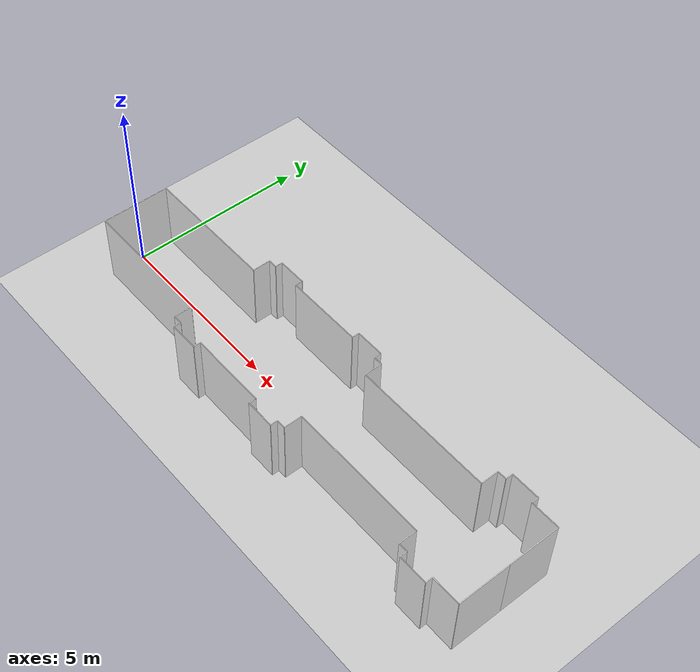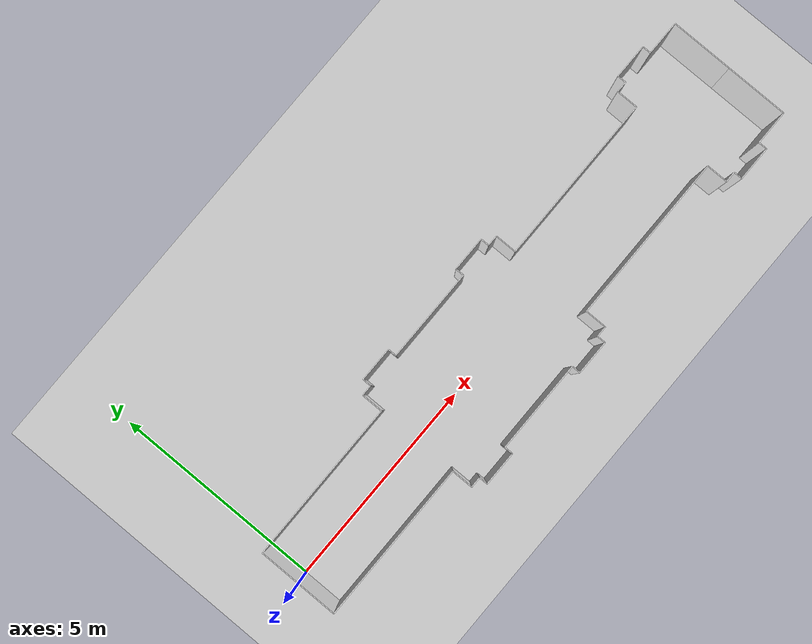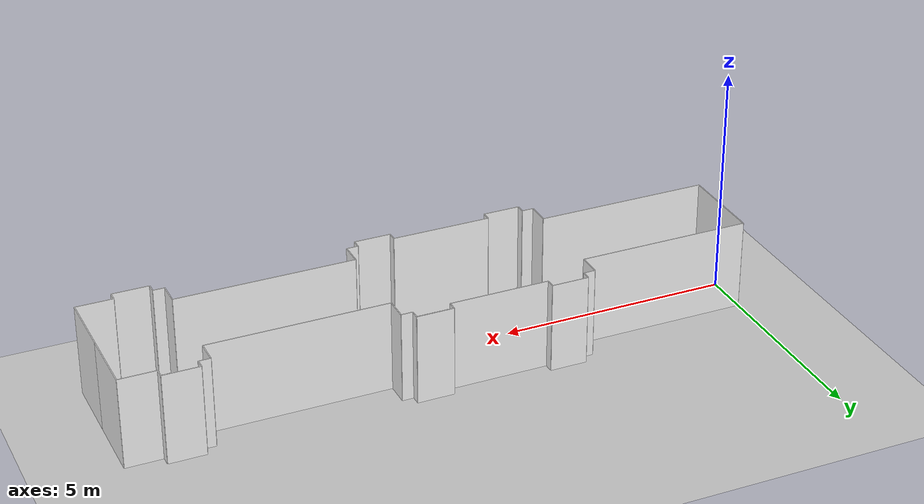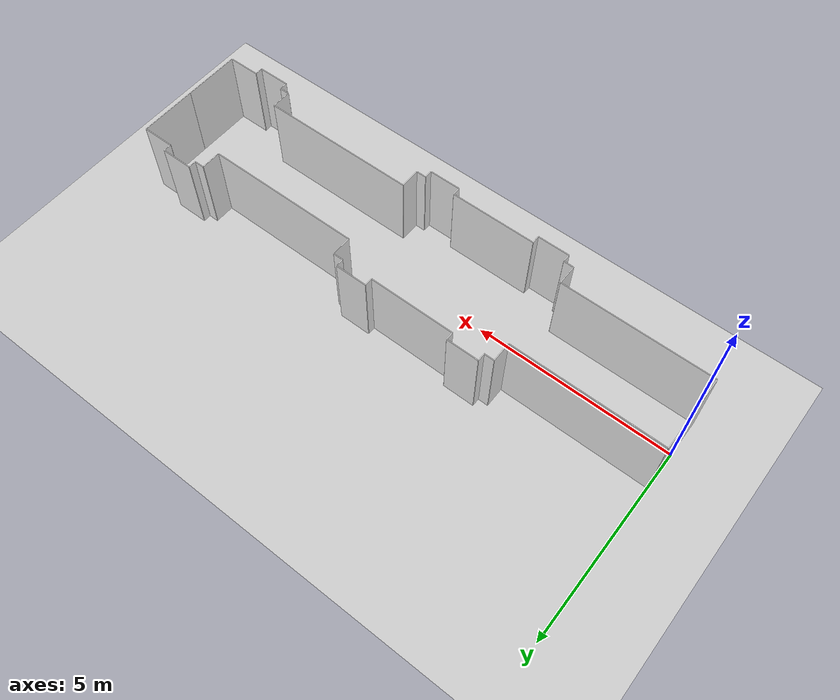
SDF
<sdf version="1.7">
 <world name="hallway_world">
  <gravity>0 0 -9.81</gravity>
  <magnetic_field>6e-06 2.3e-05 -4.2e-05</magnetic_field>
  <atmosphere type="adiabatic"/>
  <physics name="default_physics" default="0" type="ode">
   <max_step_size>0.001</max_step_size>
   <real_time_factor>1</real_time_factor>
   <real_time_update_rate>1000</real_time_update_rate>
  </physics>
  <light name="sun" type="directional">
   <pose>0 0 10 0 -0 0</pose>
   <diffuse>0.8 0.8 0.8 1</diffuse>
   <specular>0.2 0.2 0.2 1</specular>
   <attenuation>
    <range>1000</range>
    <constant>0.9</constant>
    <linear>0.01</linear>
    <quadratic>0.001</quadratic>
   </attenuation>
   <direction>-0.5 0.1 -0.9</direction>
   <spot><inner_angle>0</inner_angle><outer_angle>0</outer_angle><falloff>0</falloff></spot>
  </light>
  <model name="ground_plane">
   <static>1</static>
   <link name="link">
    <collision name="collision">
     <geometry><plane><normal>0 0 1</normal><size>100 100</size></plane></geometry>
     <surface><friction><ode><mu>1</mu><mu2>1</mu2></ode></friction></surface>
    </collision>
    <visual name="visual">
     <geometry><plane><normal>0 0 1</normal><size>100 100</size></plane></geometry>
     <material>
      <script><uri>file://media/materials/scripts/gazebo.material</uri><name>Gazebo/Grey</name></script>
     </material>
    </visual>
   </link>
  </model>
  <model name="wall_1">
   <pose>0 0.475 1 0 -0 0</pose>
   <static>1</static>
   <link name="link">
    <collision name="collision"><geometry><box><size>0.02 0.95 2</size></box></geometry></collision>
    <visual name="visual">
     <geometry><box><size>0.02 0.95 2</size></box></geometry>
     <material>
      <script><uri>file://media/materials/scripts/gazebo.material</uri><name>Gazebo/White</name></script>
     </material>
    </visual>
   </link>
  </model>
  <model name="wall_2">
   <pose>1.875 0.95 1 0 -0 0</pose>
   <static>1</static>
   <link name="link">
    <collision name="collision"><geometry><box><size>3.75 0.02 2</size></box></geometry></collision>
    <visual name="visual">
     <geometry><box><size>3.75 0.02 2</size></box></geometry>
     <material>
      <script><uri>file://media/materials/scripts/gazebo.material</uri><name>Gazebo/White</name></script>
     </material>
    </visual>
   </link>
  </model>
  <model name="wall_3">
   <pose>3.75 1.2 1 0 -0 0</pose>
   <static>1</static>
   <link name="link">
    <collision name="collision"><geometry><box><size>0.02 0.5 2</size></box></geometry></collision>
    <visual name="visual">
     <geometry><box><size>0.02 0.5 2</size></box></geometry>
     <material>
      <script><uri>file://media/materials/scripts/gazebo.material</uri><name>Gazebo/White</name></script>
     </material>
    </visual>
   </link>
  </model>
  <model name="wall_4">
   <pose>3.875 1.45 1 0 -0 0</pose>
   <static>1</static>
   <link name="link">
    <collision name="collision"><geometry><box><size>0.25 0.02 2</size></box></geometry></collision>
    <visual name="visual">
     <geometry><box><size>0.25 0.02 2</size></box></geometry>
     <material>
      <script><uri>file://media/materials/scripts/gazebo.material</uri><name>Gazebo/White</name></script>
     </material>
    </visual>
   </link>
  </model>
  <model name="wall_5">
   <pose>4 1.55 1 0 -0 0</pose>
   <static>1</static>
   <link name="link">
    <collision name="collision"><geometry><box><size>0.02 0.2 2</size></box></geometry></collision>
    <visual name="visual">
     <geometry><box><size>0.02 0.2 2</size></box></geometry>
     <material>
      <script><uri>file://media/materials/scripts/gazebo.material</uri><name>Gazebo/White</name></script>
     </material>
    </visual>
   </link>
  </model>
  <model name="wall_6">
   <pose>4.4 1.65 1 0 -0 0</pose>
   <static>1</static>
   <link name="link">
    <collision name="collision"><geometry><box><size>0.8 0.02 2</size></box></geometry></collision>
    <visual name="visual">
     <geometry><box><size>0.8 0.02 2</size></box></geometry>
     <material>
      <script><uri>file://media/materials/scripts/gazebo.material</uri><name>Gazebo/White</name></script>
     </material>
    </visual>
   </link>
  </model>
  <model name="wall_7">
   <pose>4.8 1.55 1 0 -0 0</pose>
   <static>1</static>
   <link name="link">
    <collision name="collision"><geometry><box><size>0.02 0.2 2</size></box></geometry></collision>
    <visual name="visual">
     <geometry><box><size>0.02 0.2 2</size></box></geometry>
     <material>
      <script><uri>file://media/materials/scripts/gazebo.material</uri><name>Gazebo/White</name></script>
     </material>
    </visual>
   </link>
  </model>
  <model name="wall_8">
   <pose>5.875 1.45 1 0 -0 0</pose>
   <static>1</static>
   <link name="link">
    <collision name="collision"><geometry><box><size>2.15 0.02 2</size></box></geometry></collision>
    <visual name="visual">
     <geometry><box><size>2.15 0.02 2</size></box></geometry>
     <material>
      <script><uri>file://media/materials/scripts/gazebo.material</uri><name>Gazebo/White</name></script>
     </material>
    </visual>
   </link>
  </model>
  <model name="wall_9">
   <pose>6.95 1.55 1 0 -0 0</pose>
   <static>1</static>
   <link name="link">
    <collision name="collision"><geometry><box><size>0.02 0.2 2</size></box></geometry></collision>
    <visual name="visual">
     <geometry><box><size>0.02 0.2 2</size></box></geometry>
     <material>
      <script><uri>file://media/materials/scripts/gazebo.material</uri><name>Gazebo/White</name></script>
     </material>
    </visual>
   </link>
  </model>
  <model name="wall_10">
   <pose>7.35 1.65 1 0 -0 0</pose>
   <static>1</static>
   <link name="link">
    <collision name="collision"><geometry><box><size>0.8 0.02 2</size></box></geometry></collision>
    <visual name="visual">
     <geometry><box><size>0.8 0.02 2</size></box></geometry>
     <material>
      <script><uri>file://media/materials/scripts/gazebo.material</uri><name>Gazebo/White</name></script>
     </material>
    </visual>
   </link>
  </model>
  <model name="wall_11">
   <pose>7.75 1.55 1 0 -0 0</pose>
   <static>1</static>
   <link name="link">
    <collision name="collision"><geometry><box><size>0.02 0.2 2</size></box></geometry></collision>
    <visual name="visual">
     <geometry><box><size>0.02 0.2 2</size></box></geometry>
     <material>
      <script><uri>file://media/materials/scripts/gazebo.material</uri><name>Gazebo/White</name></script>
     </material>
    </visual>
   </link>
  </model>
  <model name="wall_12">
   <pose>7.875 1.45 1 0 -0 0</pose>
   <static>1</static>
   <link name="link">
    <collision name="collision"><geometry><box><size>0.25 0.02 2</size></box></geometry></collision>
    <visual name="visual">
     <geometry><box><size>0.25 0.02 2</size></box></geometry>
     <material>
      <script><uri>file://media/materials/scripts/gazebo.material</uri><name>Gazebo/White</name></script>
     </material>
    </visual>
   </link>
  </model>
  <model name="wall_13">
   <pose>8 1.2 1 0 -0 0</pose>
   <static>1</static>
   <link name="link">
    <collision name="collision"><geometry><box><size>0.02 0.5 2</size></box></geometry></collision>
    <visual name="visual">
     <geometry><box><size>0.02 0.5 2</size></box></geometry>
     <material>
      <script><uri>file://media/materials/scripts/gazebo.material</uri><name>Gazebo/White</name></script>
     </material>
    </visual>
   </link>
  </model>
  <model name="wall_14">
   <pose>9.95 0.95 1 0 -0 0</pose>
   <static>1</static>
   <link name="link">
    <collision name="collision"><geometry><box><size>3.9 0.02 2</size></box></geometry></collision>
    <visual name="visual">
     <geometry><box><size>3.9 0.02 2</size></box></geometry>
     <material>
      <script><uri>file://media/materials/scripts/gazebo.material</uri><name>Gazebo/White</name></script>
     </material>
    </visual>
   </link>
  </model>
  <model name="wall_15">
   <pose>11.9 1.2 1 0 -0 0</pose>
   <static>1</static>
   <link name="link">
    <collision name="collision"><geometry><box><size>0.02 0.5 2</size></box></geometry></collision>
    <visual name="visual">
     <geometry><box><size>0.02 0.5 2</size></box></geometry>
     <material>
      <script><uri>file://media/materials/scripts/gazebo.material</uri><name>Gazebo/White</name></script>
     </material>
    </visual>
   </link>
  </model>
  <model name="wall_16">
   <pose>12.025 1.45 1 0 -0 0</pose>
   <static>1</static>
   <link name="link">
    <collision name="collision"><geometry><box><size>0.25 0.02 2</size></box></geometry></collision>
    <visual name="visual">
     <geometry><box><size>0.25 0.02 2</size></box></geometry>
     <material>
      <script><uri>file://media/materials/scripts/gazebo.material</uri><name>Gazebo/White</name></script>
     </material>
    </visual>
   </link>
  </model>
  <model name="wall_17">
   <pose>12.15 1.55 1 0 -0 0</pose>
   <static>1</static>
   <link name="link">
    <collision name="collision"><geometry><box><size>0.02 0.2 2</size></box></geometry></collision>
    <visual name="visual">
     <geometry><box><size>0.02 0.2 2</size></box></geometry>
     <material>
      <script><uri>file://media/materials/scripts/gazebo.material</uri><name>Gazebo/White</name></script>
     </material>
    </visual>
   </link>
  </model>
  <model name="wall_18">
   <pose>12.55 1.65 1 0 -0 0</pose>
   <static>1</static>
   <link name="link">
    <collision name="collision"><geometry><box><size>0.8 0.02 2</size></box></geometry></collision>
    <visual name="visual">
     <geometry><box><size>0.8 0.02 2</size></box></geometry>
     <material>
      <script><uri>file://media/materials/scripts/gazebo.material</uri><name>Gazebo/White</name></script>
     </material>
    </visual>
   </link>
  </model>
  <model name="wall_19">
   <pose>12.95 1.55 1 0 -0 0</pose>
   <static>1</static>
   <link name="link">
    <collision name="collision"><geometry><box><size>0.02 0.2 2</size></box></geometry></collision>
    <visual name="visual">
     <geometry><box><size>0.02 0.2 2</size></box></geometry>
     <material>
      <script><uri>file://media/materials/scripts/gazebo.material</uri><name>Gazebo/White</name></script>
     </material>
    </visual>
   </link>
  </model>
  <model name="wall_20">
   <pose>13.35 1.45 1 0 -0 0</pose>
   <static>1</static>
   <link name="link">
    <collision name="collision"><geometry><box><size>0.8 0.02 2</size></box></geometry></collision>
    <visual name="visual">
     <geometry><box><size>0.8 0.02 2</size></box></geometry>
     <material>
      <script><uri>file://media/materials/scripts/gazebo.material</uri><name>Gazebo/White</name></script>
     </material>
    </visual>
   </link>
  </model>
  <model name="wall_21">
   <pose>13.75 0.725 1 0 -0 0</pose>
   <static>1</static>
   <link name="link">
    <collision name="collision"><geometry><box><size>0.02 1.45 2</size></box></geometry></collision>
    <visual name="visual">
     <geometry><box><size>0.02 1.45 2</size></box></geometry>
     <material>
      <script><uri>file://media/materials/scripts/gazebo.material</uri><name>Gazebo/White</name></script>
     </material>
    </visual>
   </link>
  </model>
  <model name="wall_22">
   <pose>13.75 -0.725 1 0 -0 0</pose>
   <static>1</static>
   <link name="link">
    <collision name="collision"><geometry><box><size>0.02 1.45 2</size></box></geometry></collision>
    <visual name="visual">
     <geometry><box><size>0.02 1.45 2</size></box></geometry>
     <material>
      <script><uri>file://media/materials/scripts/gazebo.material</uri><name>Gazebo/White</name></script>
     </material>
    </visual>
   </link>
  </model>
  <model name="wall_23">
   <pose>13.35 -1.45 1 0 -0 0</pose>
   <static>1</static>
   <link name="link">
    <collision name="collision"><geometry><box><size>0.8 0.02 2</size></box></geometry></collision>
    <visual name="visual">
     <geometry><box><size>0.8 0.02 2</size></box></geometry>
     <material>
      <script><uri>file://media/materials/scripts/gazebo.material</uri><name>Gazebo/White</name></script>
     </material>
    </visual>
   </link>
  </model>
  <model name="wall_24">
   <pose>12.95 -1.55 1 0 -0 0</pose>
   <static>1</static>
   <link name="link">
    <collision name="collision"><geometry><box><size>0.02 0.2 2</size></box></geometry></collision>
    <visual name="visual">
     <geometry><box><size>0.02 0.2 2</size></box></geometry>
     <material>
      <script><uri>file://media/materials/scripts/gazebo.material</uri><name>Gazebo/White</name></script>
     </material>
    </visual>
   </link>
  </model>
  <model name="wall_25">
   <pose>12.55 -1.65 1 0 -0 0</pose>
   <static>1</static>
   <link name="link">
    <collision name="collision"><geometry><box><size>0.8 0.02 2</size></box></geometry></collision>
    <visual name="visual">
     <geometry><box><size>0.8 0.02 2</size></box></geometry>
     <material>
      <script><uri>file://media/materials/scripts/gazebo.material</uri><name>Gazebo/White</name></script>
     </material>
    </visual>
   </link>
  </model>
  <model name="wall_26">
   <pose>12.15 -1.55 1 0 -0 0</pose>
   <static>1</static>
   <link name="link">
    <collision name="collision"><geometry><box><size>0.02 0.2 2</size></box></geometry></collision>
    <visual name="visual">
     <geometry><box><size>0.02 0.2 2</size></box></geometry>
     <material>
      <script><uri>file://media/materials/scripts/gazebo.material</uri><name>Gazebo/White</name></script>
     </material>
    </visual>
   </link>
  </model>
  <model name="wall_27">
   <pose>12.025 -1.45 1 0 -0 0</pose>
   <static>1</static>
   <link name="link">
    <collision name="collision"><geometry><box><size>0.25 0.02 2</size></box></geometry></collision>
    <visual name="visual">
     <geometry><box><size>0.25 0.02 2</size></box></geometry>
     <material>
      <script><uri>file://media/materials/scripts/gazebo.material</uri><name>Gazebo/White</name></script>
     </material>
    </visual>
   </link>
  </model>
  <model name="wall_28">
   <pose>11.9 -1.2 1 0 -0 0</pose>
   <static>1</static>
   <link name="link">
    <collision name="collision"><geometry><box><size>0.02 0.5 2</size></box></geometry></collision>
    <visual name="visual">
     <geometry><box><size>0.02 0.5 2</size></box></geometry>
     <material>
      <script><uri>file://media/materials/scripts/gazebo.material</uri><name>Gazebo/White</name></script>
     </material>
    </visual>
   </link>
  </model>
  <model name="wall_29">
   <pose>9.95 -0.95 1 0 -0 0</pose>
   <static>1</static>
   <link name="link">
    <collision name="collision"><geometry><box><size>3.9 0.02 2</size></box></geometry></collision>
    <visual name="visual">
     <geometry><box><size>3.9 0.02 2</size></box></geometry>
     <material>
      <script><uri>file://media/materials/scripts/gazebo.material</uri><name>Gazebo/White</name></script>
     </material>
    </visual>
   </link>
  </model>
  <model name="wall_30">
   <pose>8 -1.2 1 0 -0 0</pose>
   <static>1</static>
   <link name="link">
    <collision name="collision"><geometry><box><size>0.02 0.5 2</size></box></geometry></collision>
    <visual name="visual">
     <geometry><box><size>0.02 0.5 2</size></box></geometry>
     <material>
      <script><uri>file://media/materials/scripts/gazebo.material</uri><name>Gazebo/White</name></script>
     </material>
    </visual>
   </link>
  </model>
  <model name="wall_31">
   <pose>7.875 -1.45 1 0 -0 0</pose>
   <static>1</static>
   <link name="link">
    <collision name="collision"><geometry><box><size>0.25 0.02 2</size></box></geometry></collision>
    <visual name="visual">
     <geometry><box><size>0.25 0.02 2</size></box></geometry>
     <material>
      <script><uri>file://media/materials/scripts/gazebo.material</uri><name>Gazebo/White</name></script>
     </material>
    </visual>
   </link>
  </model>
  <model name="wall_32">
   <pose>7.75 -1.55 1 0 -0 0</pose>
   <static>1</static>
   <link name="link">
    <collision name="collision"><geometry><box><size>0.02 0.2 2</size></box></geometry></collision>
    <visual name="visual">
     <geometry><box><size>0.02 0.2 2</size></box></geometry>
     <material>
      <script><uri>file://media/materials/scripts/gazebo.material</uri><name>Gazebo/White</name></script>
     </material>
    </visual>
   </link>
  </model>
  <model name="wall_33">
   <pose>7.35 -1.65 1 0 -0 0</pose>
   <static>1</static>
   <link name="link">
    <collision name="collision"><geometry><box><size>0.8 0.02 2</size></box></geometry></collision>
    <visual name="visual">
     <geometry><box><size>0.8 0.02 2</size></box></geometry>
     <material>
      <script><uri>file://media/materials/scripts/gazebo.material</uri><name>Gazebo/White</name></script>
     </material>
    </visual>
   </link>
  </model>
  <model name="wall_34">
   <pose>6.95 -1.55 1 0 -0 0</pose>
   <static>1</static>
   <link name="link">
    <collision name="collision"><geometry><box><size>0.02 0.2 2</size></box></geometry></collision>
    <visual name="visual">
     <geometry><box><size>0.02 0.2 2</size></box></geometry>
     <material>
      <script><uri>file://media/materials/scripts/gazebo.material</uri><name>Gazebo/White</name></script>
     </material>
    </visual>
   </link>
  </model>
  <model name="wall_35">
   <pose>5.875 -1.45 1 0 -0 0</pose>
   <static>1</static>
   <link name="link">
    <collision name="collision"><geometry><box><size>2.15 0.02 2</size></box></geometry></collision>
    <visual name="visual">
     <geometry><box><size>2.15 0.02 2</size></box></geometry>
     <material>
      <script><uri>file://media/materials/scripts/gazebo.material</uri><name>Gazebo/White</name></script>
     </material>
    </visual>
   </link>
  </model>
  <model name="wall_36">
   <pose>4.8 -1.55 1 0 -0 0</pose>
   <static>1</static>
   <link name="link">
    <collision name="collision"><geometry><box><size>0.02 0.2 2</size></box></geometry></collision>
    <visual name="visual">
     <geometry><box><size>0.02 0.2 2</size></box></geometry>
     <material>
      <script><uri>file://media/materials/scripts/gazebo.material</uri><name>Gazebo/White</name></script>
     </material>
    </visual>
   </link>
  </model>
  <model name="wall_37">
   <pose>4.4 -1.65 1 0 -0 0</pose>
   <static>1</static>
   <link name="link">
    <collision name="collision"><geometry><box><size>0.8 0.02 2</size></box></geometry></collision>
    <visual name="visual">
     <geometry><box><size>0.8 0.02 2</size></box></geometry>
     <material>
      <script><uri>file://media/materials/scripts/gazebo.material</uri><name>Gazebo/White</name></script>
     </material>
    </visual>
   </link>
  </model>
  <model name="wall_38">
   <pose>4 -1.55 1 0 -0 0</pose>
   <static>1</static>
   <link name="link">
    <collision name="collision"><geometry><box><size>0.02 0.2 2</size></box></geometry></collision>
    <visual name="visual">
     <geometry><box><size>0.02 0.2 2</size></box></geometry>
     <material>
      <script><uri>file://media/materials/scripts/gazebo.material</uri><name>Gazebo/White</name></script>
     </material>
    </visual>
   </link>
  </model>
  <model name="wall_39">
   <pose>3.875 -1.45 1 0 -0 0</pose>
   <static>1</static>
   <link name="link">
    <collision name="collision"><geometry><box><size>0.25 0.02 2</size></box></geometry></collision>
    <visual name="visual">
     <geometry><box><size>0.25 0.02 2</size></box></geometry>
     <material>
      <script><uri>file://media/materials/scripts/gazebo.material</uri><name>Gazebo/White</name></script>
     </material>
    </visual>
   </link>
  </model>
  <model name="wall_40">
   <pose>3.75 -1.2 1 0 -0 0</pose>
   <static>1</static>
   <link name="link">
    <collision name="collision"><geometry><box><size>0.02 0.5 2</size></box></geometry></collision>
    <visual name="visual">
     <geometry><box><size>0.02 0.5 2</size></box></geometry>
     <material>
      <script><uri>file://media/materials/scripts/gazebo.material</uri><name>Gazebo/White</name></script>
     </material>
    </visual>
   </link>
  </model>
  <model name="wall_41">
   <pose>1.875 -0.95 1 0 -0 0</pose>
   <static>1</static>
   <link name="link">
    <collision name="collision"><geometry><box><size>3.75 0.02 2</size></box></geometry></collision>
    <visual name="visual">
     <geometry><box><size>3.75 0.02 2</size></box></geometry>
     <material>
      <script><uri>file://media/materials/scripts/gazebo.material</uri><name>Gazebo/White</name></script>
     </material>
    </visual>
   </link>
  </model>
  <model name="wall_42">
   <pose>0 -0.475 1 0 -0 0</pose>
   <static>1</static>
   <link name="link">
    <collision name="collision"><geometry><box><size>0.02 0.95 2</size></box></geometry></collision>
    <visual name="visual">
     <geometry><box><size>0.02 0.95 2</size></box></geometry>
     <material>
      <script><uri>file://media/materials/scripts/gazebo.material</uri><name>Gazebo/White</name></script>
     </material>
    </visual>
   </link>
  </model>
  <scene><ambient>0.4 0.4 0.4 1</ambient><background>0.7 0.7 0.7 1</background><shadows>1</shadows></scene>
  <audio><device>default</device></audio>
  <spherical_coordinates>
   <surface_model>EARTH_WGS84</surface_model>
   <latitude_deg>0</latitude_deg>
   <longitude_deg>0</longitude_deg>
   <elevation>0</elevation>
   <heading_deg>0</heading_deg>
  </spherical_coordinates>
 </world>
</sdf>
